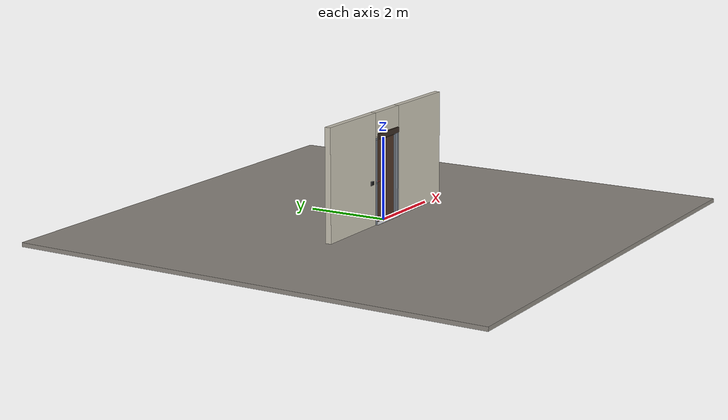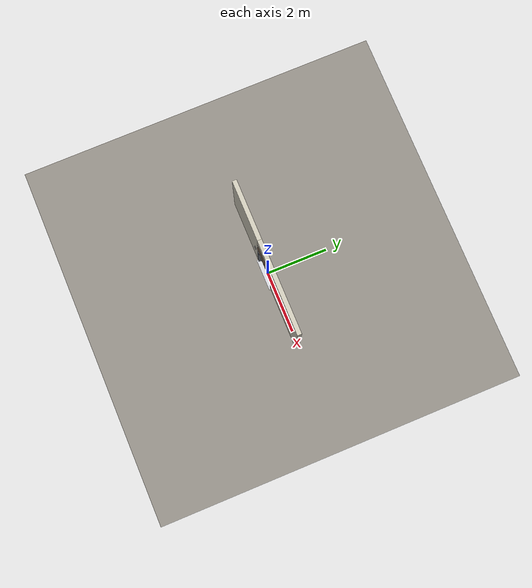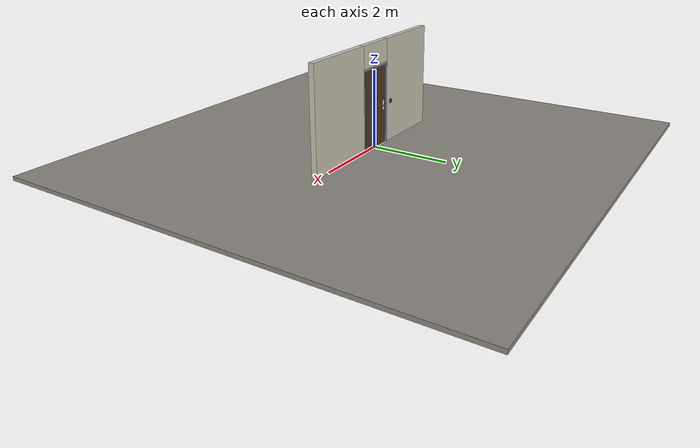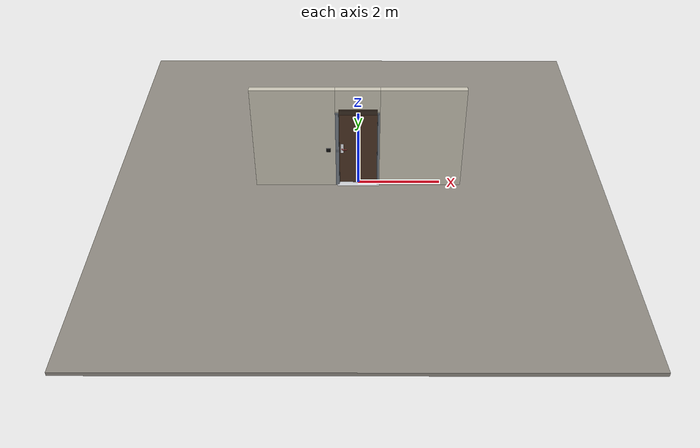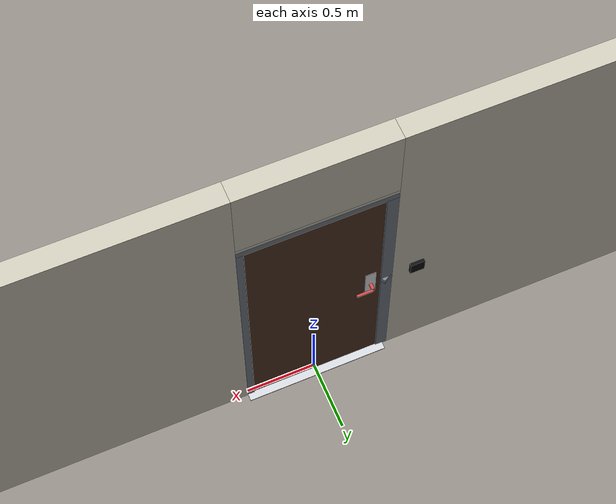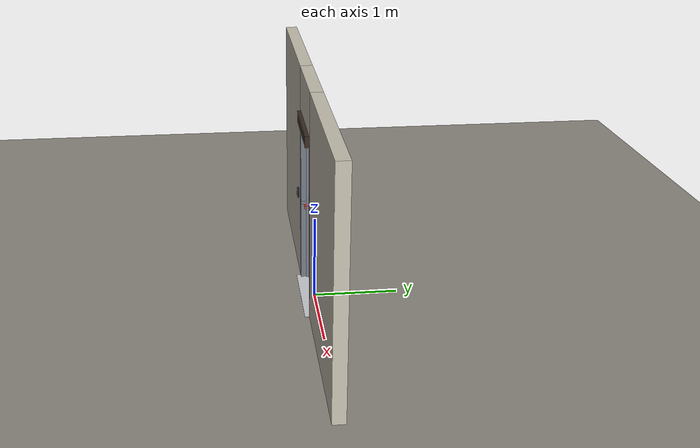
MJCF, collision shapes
<?xml version="1.0" ?>
<mujoco model="db0939_automatic_swing_full">
  <compiler angle="radian" meshdir="../../hardware" texturedir="../../textures" autolimits="true" inertiafromgeom="false"/>
  <option timestep="0.002" integrator="implicitfast" cone="elliptic" impratio="10" noslip_iterations="3">
    <flag multiccd="enable"/>
  </option>
  <size memory="16M"/>
  <default>
    <geom condim="4" solref="0.005 1" solimp="0.95 0.99 0.001"/>
    <joint solreflimit="0.005 1" solimplimit="0.95 0.99 0.001"/>
    <tendon solreflimit="0.005 1"/>
    <equality solref="0.002 1"/>
  </default>
  <visual>
    <headlight ambient="0.4 0.4 0.4" diffuse="0.7 0.7 0.7" specular="0.2 0.2 0.2"/>
    <quality shadowsize="4096"/>
    <map znear="0.01" zfar="60"/>
  </visual>
  <asset>
    <mesh name="card_reader_38c0bdb077" file="card_reader_38c0bdb077.obj"/>
    <mesh name="hinge_e22b26c0c1" file="hinge_e22b26c0c1.obj"/>
    <mesh name="hinge_jamb_e1d088f8dc" file="hinge_jamb_e1d088f8dc.obj"/>
    <mesh name="lever_56c65af20a" file="lever_56c65af20a.obj"/>
    <mesh name="peephole_f829311a59" file="peephole_f829311a59.obj"/>
    <material name="mat_floor" rgba="0.55 0.53 0.5 1" specular="0.2" shininess="0.15" reflectance="0"/>
    <material name="mat_wall" rgba="0.78 0.76 0.7 1" specular="0.2" shininess="0.1" reflectance="0"/>
    <material name="mat_leaf" rgba="0.3 0.2 0.14 1" specular="0.2" shininess="0.42" reflectance="0"/>
    <material name="mat_hinge" rgba="0.65 0.66 0.68 1" specular="0.74" shininess="0.5" reflectance="0.36"/>
    <material name="mat_op_chrome" rgba="0.9 0.9 0.92 1" specular="0.8" shininess="0.9" reflectance="0.4"/>
    <material name="mat_trim" rgba="0.85 0.66 0.3 1" specular="0.8" shininess="0.75" reflectance="0.4"/>
    <material name="mat_reader" rgba="0.05 0.05 0.05 1" specular="0.38" shininess="0.3" reflectance="0.12"/>
    <material name="mat_bolt" rgba="0.75 0.76 0.77 1" specular="0.8" shininess="0.65" reflectance="0.4"/>
    <material name="mat_frame" rgba="0.45 0.48 0.52 1" specular="0.32" shininess="0.6" reflectance="0.08"/>
    <material name="mat_seal" rgba="0.1 0.1 0.1 1" specular="0.2" shininess="0.1" reflectance="0"/>
    <material name="mat_threshold" rgba="0.8 0.81 0.83 1" specular="0.8" shininess="0.6" reflectance="0.4"/>
    <material name="mat_closer" rgba="0.22 0.17 0.13 1" specular="0.8" shininess="0.6" reflectance="0.4"/>
    <material name="mat_peephole" rgba="0.85 0.66 0.3 1" specular="0.8" shininess="0.75" reflectance="0.4"/>
    <material name="mat_wallreader" rgba="0.05 0.05 0.05 1" specular="0.38" shininess="0.3" reflectance="0.12"/>
    <texture name="skybox" type="skybox" builtin="gradient" rgb1="0.6 0.7 0.85" rgb2="0.9 0.92 0.95" width="256" height="256"/>
  </asset>
  <worldbody>
    <light name="sun" pos="1.5 -2.5 4" dir="-0.3 0.5 -0.8" directional="true" diffuse="0.8 0.8 0.8" specular="0.3 0.3 0.3" castshadow="true"/>
    <light name="fill" pos="-1.5 2.5 3" dir="0.3 -0.5 -0.7" directional="true" diffuse="0.35 0.35 0.4" castshadow="false"/>
    <camera name="robot_view" pos="0 -2.585687 1.734312" xyaxes="1 0 0 0 0.26963 0.962964" fovy="52"/>
    <camera name="far_view" pos="0 2.498687 1.734312" xyaxes="-1 0 0 0 -0.26963 0.962964" fovy="52"/>
    <camera name="iso" pos="-1.932062 -2.178937 2.141063" xyaxes="0.741536 -0.670913 0 0.242917 0.268487 0.932151" fovy="46"/>
    <camera name="detail_handle" pos="-0.1105 -0.877 1.296" xyaxes="0.97561 0.219512 0 -0.070934 0.315262 0.94635" fovy="38"/>
    <geom name="floor" type="box" size="6 6 0.05" pos="0 0 -0.05" material="mat_floor" group="0" contype="1" conaffinity="1" friction="0.8 0.005 0.0001" density="2400"/>
    <geom name="wall_left" type="box" size="0.97975 0.0725 1.35" pos="-1.52025 -0.0435 1.35" material="mat_wall" group="0" contype="1" conaffinity="1" friction="0.6 0.005 0.0001" density="800"/>
    <geom name="wall_right" type="box" size="0.99475 0.0725 1.35" pos="1.50525 -0.0435 1.35" material="mat_wall" group="0" contype="1" conaffinity="1" friction="0.6 0.005 0.0001" density="800"/>
    <geom name="wall_header" type="box" size="0.5255 0.0725 0.2875" pos="-0.015 -0.0435 2.4125" material="mat_wall" group="0" contype="1" conaffinity="1" friction="0.6 0.005 0.0001" density="800"/>
    <geom name="hinge_0_jamb" type="mesh" mesh="hinge_jamb_e1d088f8dc" pos="0.4575 0.029 0.259" quat="0 0 0 1" material="mat_hinge" group="1" contype="0" conaffinity="0" density="7850"/>
    <geom name="hinge_1_jamb" type="mesh" mesh="hinge_jamb_e1d088f8dc" pos="0.4575 0.029 1.025" quat="0 0 0 1" material="mat_hinge" group="1" contype="0" conaffinity="0" density="7850"/>
    <geom name="hinge_2_jamb" type="mesh" mesh="hinge_jamb_e1d088f8dc" pos="0.4575 0.029 1.861" quat="0 0 0 1" material="mat_hinge" group="1" contype="0" conaffinity="0" density="7850"/>
    <geom name="jamb_hinge" type="box" size="0.025 0.0725 1.0225" pos="0.4855 -0.0435 1.0225" material="mat_frame" group="0" contype="1" conaffinity="1" friction="0.6 0.005 0.0001" density="300"/>
    <geom name="strike_1016_wall_n" type="box" size="0.04 0.05325 0.018" pos="-0.5005 -0.06275 1.016" material="mat_frame" group="0" contype="1" conaffinity="1" friction="0.6 0.005 0.0001" density="300"/>
    <geom name="strike_1016_wall_p" type="box" size="0.04 0.008 0.018" pos="-0.5005 0.0175 1.016" material="mat_frame" group="0" contype="1" conaffinity="1" friction="0.6 0.005 0.0001" density="300"/>
    <geom name="strike_1016_ramp" type="box" size="0.04 0.018028 0.018" pos="-0.503782 0.018312 1.016" quat="0.957092 0 0 0.289784" material="mat_frame" group="0" contype="1" conaffinity="1" friction="0.12 0.005 0.0001" density="300"/>
    <geom name="strike_1016_back" type="box" size="0.0285 0.0095 0.018" pos="-0.512 0 1.016" material="mat_frame" group="0" contype="1" conaffinity="1" friction="0.6 0.005 0.0001" density="300"/>
    <geom name="jamb_strike_0" type="box" size="0.04 0.0725 0.499" pos="-0.5005 -0.0435 0.499" material="mat_frame" group="0" contype="1" conaffinity="1" friction="0.6 0.005 0.0001" density="300"/>
    <geom name="jamb_strike_1" type="box" size="0.04 0.0725 0.5055" pos="-0.5005 -0.0435 1.5395" material="mat_frame" group="0" contype="1" conaffinity="1" friction="0.6 0.005 0.0001" density="300"/>
    <geom name="jamb_head" type="box" size="0.5255 0.0725 0.025" pos="-0.015 -0.0435 2.07" material="mat_frame" group="0" contype="1" conaffinity="1" friction="0.6 0.005 0.0001" density="300"/>
    <geom name="head_stud" type="box" size="0.5255 0.0725 0.015" pos="-0.015 -0.0435 2.11" material="mat_wall" group="0" contype="1" conaffinity="1" friction="0.6 0.005 0.0001" density="500"/>
    <geom name="stop_hinge" type="box" size="0.0055 0.016 1.0225" pos="0.455 -0.0385 1.0225" material="mat_frame" group="0" contype="1" conaffinity="1" friction="0.6 0.005 0.0001" density="300"/>
    <geom name="stop_strike" type="box" size="0.0055 0.016 1.0225" pos="-0.455 -0.0385 1.0225" material="mat_frame" group="0" contype="1" conaffinity="1" friction="0.6 0.005 0.0001" density="300"/>
    <geom name="stop_head" type="box" size="0.4605 0.016 0.0055" pos="0 -0.0385 2.0395" material="mat_frame" group="0" contype="1" conaffinity="1" friction="0.6 0.005 0.0001" density="300"/>
    <geom name="seal_hinge" type="box" size="0.004 0.002 1.0225" pos="0.4575 -0.024 1.0225" material="mat_seal" group="1" contype="0" conaffinity="0" density="1100"/>
    <geom name="seal_strike" type="box" size="0.004 0.002 1.0225" pos="-0.4575 -0.024 1.0225" material="mat_seal" group="1" contype="0" conaffinity="0" density="1100"/>
    <geom name="seal_head" type="box" size="0.4405 0.002 0.008" pos="0 -0.024 2.033" material="mat_seal" group="1" contype="0" conaffinity="0" density="1100"/>
    <geom name="threshold" type="box" size="0.5105 0.1225 0.004" pos="0 -0.0435 0.004" material="mat_threshold" group="0" contype="1" conaffinity="1" friction="0.6 0.005 0.0001" density="2700"/>
    <geom name="auto_operator_header" type="box" size="0.45 0.065 0.065" pos="0 -0.097 2.126" material="mat_closer" group="0" contype="1" conaffinity="1" friction="0.6 0.005 0.0001" density="1500"/>
    <geom name="wave_sensor_n" type="box" size="0.05 0.012 0.05" pos="-0.7105 -0.128 1.05" material="mat_wallreader" group="0" contype="1" conaffinity="1" friction="0.6 0.005 0.0001" density="1000"/>
    <geom name="wave_sensor_p" type="box" size="0.05 0.012 0.05" pos="-0.7105 0.041 1.05" material="mat_wallreader" group="0" contype="1" conaffinity="1" friction="0.6 0.005 0.0001" density="1000"/>
    <geom name="wave_sensor_p_pad" type="box" size="0.04 0.073 0.04" pos="-0.7105 -0.0435 1.05" material="mat_wallreader" group="1" contype="0" conaffinity="0" density="7850"/>
    <site name="approach_point" pos="0 -1.5 0" quat="1 0 0 0" size="0.05" rgba="0.2 0.9 0.2 0.5" group="4"/>
    <site name="goal_point" pos="0 1.5 0" quat="1 0 0 0" size="0.05" rgba="0.2 0.9 0.2 0.5" group="4"/>
    <site name="door_plane_center" pos="0 0 1.0225" quat="1 0 0 0" size="0.02" rgba="0.2 0.9 0.2 0.5" group="4"/>
    <body name="leaf" pos="0.4605 0 0">
      <inertial pos="-0.460851 0.000286 1.035428" mass="57.127917" quat="0.500279 -0.500703 -0.498844 -0.500172" diaginertia="4.171928861 19.63365057 23.782903468"/>
      <joint name="leaf_hinge" type="hinge" axis="0 0 -1" pos="-0.003 0.029 0" limited="true" range="0 1.570796" solreflimit="0.02 1" damping="15.25611" frictionloss="1.320119" stiffness="12.827888" springref="-1.543512" armature="0.02"/>
      <geom name="leaf_slab" type="box" size="0.457 0.022 1.016" pos="-0.46 0 1.025" material="mat_leaf" group="0" contype="1" conaffinity="1" friction="0.4 0.005 0.0001" density="1"/>
      <geom name="hinge_0" type="mesh" mesh="hinge_e22b26c0c1" pos="-0.003 0.029 0.259" quat="0 0 0 1" material="mat_hinge" group="1" contype="0" conaffinity="0" density="7850"/>
      <geom name="hinge_1" type="mesh" mesh="hinge_e22b26c0c1" pos="-0.003 0.029 1.025" quat="0 0 0 1" material="mat_hinge" group="1" contype="0" conaffinity="0" density="7850"/>
      <geom name="hinge_2" type="mesh" mesh="hinge_e22b26c0c1" pos="-0.003 0.029 1.861" quat="0 0 0 1" material="mat_hinge" group="1" contype="0" conaffinity="0" density="7850"/>
      <geom name="leaf_handle_escutcheon_n" type="box" size="0.0375 0.0015 0.13" pos="-0.847 -0.0235 1.016" material="mat_op_chrome" group="1" contype="0" conaffinity="0" density="3000"/>
      <geom name="leaf_handle_escutcheon_p" type="box" size="0.0375 0.0015 0.13" pos="-0.847 0.0235 1.016" material="mat_op_chrome" group="1" contype="0" conaffinity="0" density="3000"/>
      <geom name="leaf_handle_reader" type="mesh" mesh="card_reader_38c0bdb077" pos="-0.847 0.022 1.176" quat="0 0 0.707107 0.707107" material="mat_reader" group="1" contype="0" conaffinity="0" density="2000"/>
      <geom name="leaf_latch_bolt_faceplate" type="box" size="0.0006 0.014 0.028" pos="-0.9164 0 1.016" material="mat_bolt" group="1" contype="0" conaffinity="0" density="8500"/>
      <geom name="auto_operator_arm" type="box" size="0.22 0.008 0.008" pos="-0.25 -0.052 2.012" material="mat_closer" group="1" contype="0" conaffinity="0" density="2700"/>
      <geom name="auto_operator_arm_shoe" type="box" size="0.03 0.016 0.014" pos="-0.44 -0.038 2.012" material="mat_closer" group="1" contype="0" conaffinity="0" density="2700"/>
      <geom name="peephole" type="mesh" mesh="peephole_f829311a59" pos="-0.46 -0.022 1.509" quat="0 0 -0.707107 0.707107" material="mat_peephole" group="2" contype="0" conaffinity="0" density="8500"/>
      <site name="leaf_edge_mid" pos="-0.917 0 1.016" quat="1 0 0 0" size="0.02" rgba="0.2 0.9 0.2 0.5" group="4"/>
      <body name="leaf_handle" pos="-0.847 0 1.016">
        <inertial pos="0.034904 0 0" mass="0.739068" quat="0.707107 0 0 -0.707107" diaginertia="0.001260094 0.003272501 0.004494637"/>
        <joint name="leaf_handle_hinge" type="hinge" axis="0 1 0" limited="true" range="0 0.87" damping="0.231314" frictionloss="0.06" stiffness="1.1" springref="-0.454545" armature="0.01"/>
        <geom name="leaf_handle_spindle" type="cylinder" size="0.006 0.034" pos="0 0 0" quat="0.707107 -0.707107 0 0" material="mat_op_chrome" group="1" contype="0" conaffinity="0" density="7850"/>
        <geom name="leaf_handle_lever_n" type="mesh" mesh="lever_56c65af20a" pos="0 -0.022 0" quat="0 0 -0.707107 0.707107" material="mat_op_chrome" group="1" contype="0" conaffinity="0" density="3000"/>
        <geom name="leaf_handle_lever_col_n" type="capsule" size="0.0095 0.0505" pos="0.06 -0.077 0" quat="0.707107 0 0.707107 0" material="mat_op_chrome" group="3" contype="1" conaffinity="1" rgba="0.8 0.3 0.3 0.25" friction="0.7 0.01 0.0001" density="3000"/>
        <geom name="leaf_handle_hub_col_n" type="cylinder" size="0.012 0.022" pos="0 -0.052 0" quat="0.707107 -0.707107 0 0" material="mat_op_chrome" group="3" contype="1" conaffinity="1" rgba="0.8 0.3 0.3 0.25" friction="0.6 0.005 0.0001" density="3000"/>
        <geom name="leaf_handle_lever_p" type="mesh" mesh="lever_56c65af20a" pos="0 0.022 0" quat="0 0 0.707107 0.707107" material="mat_op_chrome" group="1" contype="0" conaffinity="0" density="3000"/>
        <geom name="leaf_handle_lever_col_p" type="capsule" size="0.0095 0.0505" pos="0.06 0.077 0" quat="0.707107 0 0.707107 0" material="mat_op_chrome" group="3" contype="1" conaffinity="1" rgba="0.8 0.3 0.3 0.25" friction="0.7 0.01 0.0001" density="3000"/>
        <geom name="leaf_handle_hub_col_p" type="cylinder" size="0.012 0.022" pos="0 0.052 0" quat="0.707107 -0.707107 0 0" material="mat_op_chrome" group="3" contype="1" conaffinity="1" rgba="0.8 0.3 0.3 0.25" friction="0.6 0.005 0.0001" density="3000"/>
        <site name="leaf_handle_grip_n" pos="0.096 -0.077 0" quat="1 0 0 0" size="0.012" rgba="0.2 0.9 0.2 0.5" group="4"/>
        <site name="leaf_handle_grip_p" pos="0.096 0.077 0" quat="1 0 0 0" size="0.012" rgba="0.2 0.9 0.2 0.5" group="4"/>
      </body>
      <body name="leaf_latch_bolt" pos="-0.917 0 1.016">
        <inertial pos="0.0055 0 0" mass="0.074627" quat="0.92388 0.382683 0 0" diaginertia="0.000002271 0.000013255 0.000013255"/>
        <joint name="leaf_latch_bolt_slide" type="slide" axis="1 0 0" limited="true" range="0 0.019" damping="2" frictionloss="0.3" stiffness="550" springref="-0.01" armature="0.1"/>
        <geom name="leaf_latch_bolt_capsule" type="capsule" size="0.008 0.0165" pos="0.0055 0 0" quat="0.707107 0 -0.707107 0" material="mat_bolt" group="0" contype="1" conaffinity="1" friction="0.2 0.005 0.0001" density="8500"/>
      </body>
    </body>
  </worldbody>
  <tendon>
    <fixed name="leaf_latch_bolt_coupling" limited="true" range="0 10">
      <joint joint="leaf_latch_bolt_slide" coef="1"/>
      <joint joint="leaf_handle_hinge" coef="-0.023457"/>
    </fixed>
  </tendon>
  <actuator>
    <position name="swing_operator" joint="leaf_hinge" kp="150" kv="40" forcerange="-60 60" ctrlrange="0 1.6"/>
  </actuator>
  <sensor>
    <jointpos name="leaf_hinge_pos" joint="leaf_hinge"/>
    <jointvel name="leaf_hinge_vel" joint="leaf_hinge"/>
    <jointpos name="leaf_handle_hinge_pos" joint="leaf_handle_hinge"/>
    <jointvel name="leaf_handle_hinge_vel" joint="leaf_handle_hinge"/>
    <jointpos name="leaf_latch_bolt_slide_pos" joint="leaf_latch_bolt_slide"/>
    <jointvel name="leaf_latch_bolt_slide_vel" joint="leaf_latch_bolt_slide"/>
  </sensor>
</mujoco>
